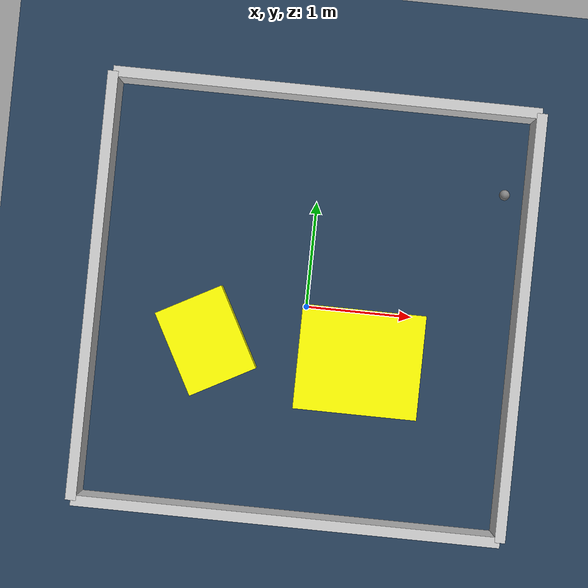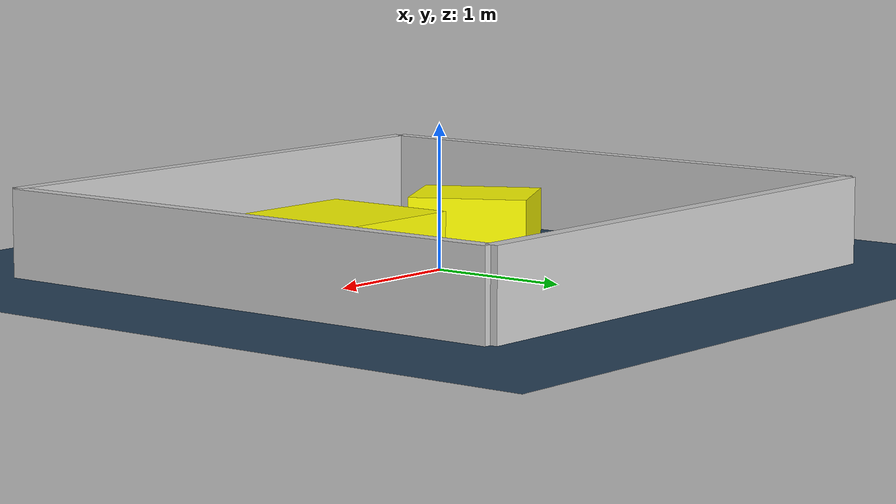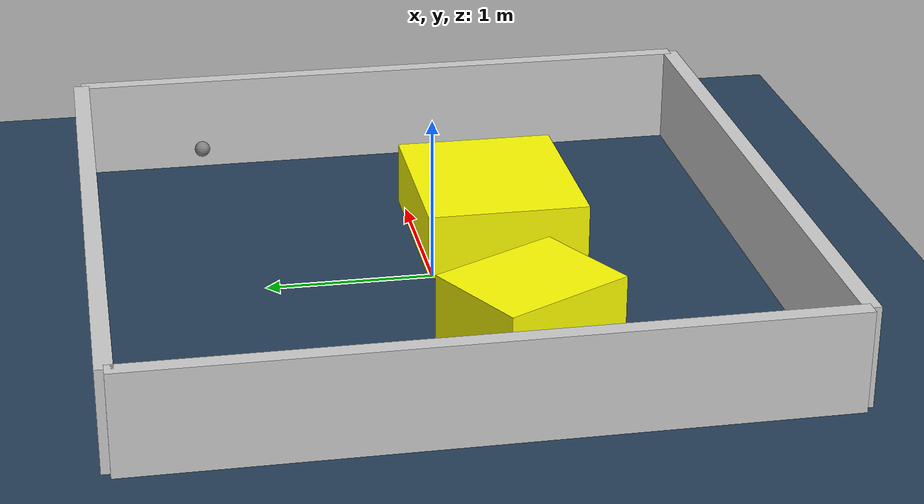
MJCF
<?xml version="1.0" ?>
<mujoco model="generated_environment">
  <option timestep="0.01" integrator="RK4" cone="elliptic"/>
  <default>
    <geom density="1"/>
  </default>
  <asset>
    <texture builtin="gradient" height="3072" rgb1="0.3 0.5 0.7" rgb2="0 0 0" type="skybox" width="512"/>
    <texture builtin="checker" height="300" mark="edge" markrgb="0.8 0.8 0.8" name="groundplane" rgb1="0.2 0.3 0.4" rgb2="0.1 0.2 0.3" type="2d" width="300"/>
    <material name="groundplane" reflectance="0.2" texrepeat="5 5" texture="groundplane" texuniform="true"/>
    <material name="robot" rgba="0.0 1.0 0.0 1"/>
  </asset>
  <worldbody>
    <light dir="0 0 -1" directional="true" pos="0 0 1.5"/>
    <geom condim="4" friction="1.0 0.005 0.001" material="groundplane" name="floor" size="0 0 0.05" type="plane"/>
    <body name="walls">
      <geom name="wall_1" condim="4" pos="-2.0 0.0 0.3" rgba="0.800000011920929 0.800000011920929 0.800000011920929 1.0" size="0.05 2.0 0.3" type="box"/>
      <geom name="wall_2" condim="4" pos="2.0 0.0 0.3" rgba="0.800000011920929 0.800000011920929 0.800000011920929 1.0" size="0.05 2.0 0.3" type="box"/>
      <geom name="wall_3" condim="4" pos="0.0 -2.0 0.3" rgba="0.800000011920929 0.800000011920929 0.800000011920929 1.0" size="2.0 0.05 0.3" type="box"/>
      <geom name="wall_4" condim="4" pos="0.0 2.0 0.3" rgba="0.800000011920929 0.800000011920929 0.800000011920929 1.0" size="2.0 0.05 0.3" type="box"/>
    </body>
    <body name="robot">
      <joint name="joint_x" type="slide" pos="0 0 0" axis="1 0 0"/>
      <joint name="joint_y" type="slide" pos="0 0 0" axis="0 1 0"/>
      <geom name="robot" type="sphere" pos="1.7571209245536337 1.237441269503151 0.2" size="0.05" mass="5." friction="1.0 0.005 0.0001" condim="4"/>
      <site name="sensor_ball"/>
    </body>
    <body name="obstacle_1_movable">
      <geom name="obstacle_1_movable" condim="4" pos="0.545790370425741 -0.4671125923984296 0.2" euler="0 0 359.8910863559658" friction="1.0 0.005 0.001" rgba="1 1 0 1" size="0.5821788221163444 0.49197822683315945 0.2" type="box" mass="0.1"/>
      <joint type="free"/>
    </body>
    <body name="obstacle_2_movable">
      <geom name="obstacle_2_movable" condim="4" pos="-0.911081311848046 -0.40920482143496906 0.2" euler="0 0 28.26864168116398" friction="1.0 0.005 0.001" rgba="1 1 0 1" size="0.3376547989261735 0.42034276823119965 0.2" type="box" mass="0.1"/>
      <joint type="free"/>
    </body>
  </worldbody>
  <actuator>
    <motor name="actuator_x" joint="joint_x" gear="1" ctrlrange="-1 1"/>
    <motor name="actuator_y" joint="joint_y" gear="1" ctrlrange="-1 1"/>
  </actuator>
</mujoco>
